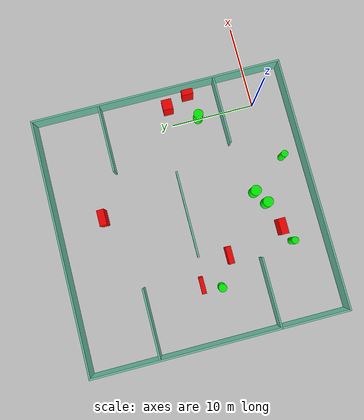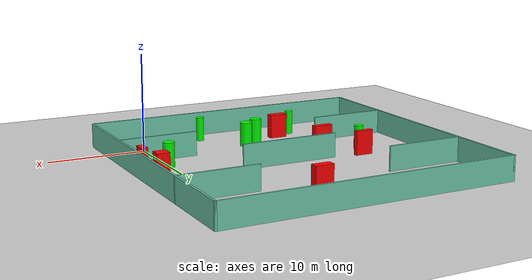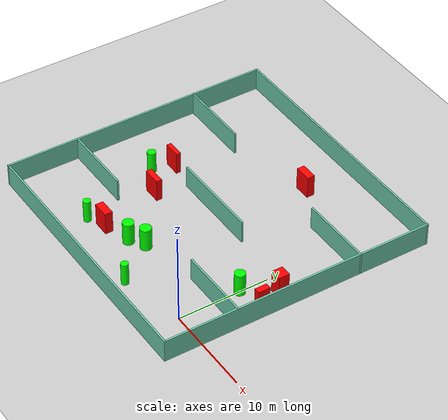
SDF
<sdf version="1.7">
 <world name="default">
  <light name="sun" type="directional">
   <pose>0 0 10 0 -0 0</pose>
   <diffuse>0.8 0.8 0.8 1</diffuse>
   <specular>0.2 0.2 0.2 1</specular>
   <attenuation>
    <range>1000</range>
    <constant>0.9</constant>
    <linear>0.01</linear>
    <quadratic>0.001</quadratic>
   </attenuation>
   <direction>-0.5 0.1 -0.9</direction>
   <spot><inner_angle>0</inner_angle><outer_angle>0</outer_angle><falloff>0</falloff></spot>
  </light>
  <model name="ground_plane">
   <static>1</static>
   <link name="link">
    <collision name="collision">
     <geometry><plane><normal>0 0 1</normal><size>100 100</size></plane></geometry>
     <surface>
      <contact><collide_bitmask>65535</collide_bitmask></contact>
      <friction><ode><mu>100</mu><mu2>50</mu2></ode></friction>
     </surface>
    </collision>
    <visual name="visual">
     <cast_shadows>0</cast_shadows>
     <geometry><plane><normal>0 0 1</normal><size>100 100</size></plane></geometry>
     <material>
      <script><uri>file://media/materials/scripts/gazebo.material</uri><name>Gazebo/Grey</name></script>
     </material>
    </visual>
   </link>
  </model>
  <gravity>0 0 -9.8</gravity>
  <magnetic_field>6e-06 2.3e-05 -4.2e-05</magnetic_field>
  <atmosphere type="adiabatic"/>
  <physics type="ode">
   <max_step_size>0.001</max_step_size>
   <real_time_factor>1</real_time_factor>
   <real_time_update_rate>1000</real_time_update_rate>
  </physics>
  <scene><ambient>0.4 0.4 0.4 1</ambient><background>0.7 0.7 0.7 1</background><shadows>1</shadows></scene>
  <spherical_coordinates>
   <surface_model>EARTH_WGS84</surface_model>
   <latitude_deg>0</latitude_deg>
   <longitude_deg>0</longitude_deg>
   <elevation>0</elevation>
   <heading_deg>0</heading_deg>
  </spherical_coordinates>
  <model name="my_base_walls">
   <link name="Wall_10">
    <collision name="Wall_10_Collision">
     <geometry><box><size>8.2 0.2 2.5</size></box></geometry>
     <pose>0 0 1.25 0 -0 0</pose>
    </collision>
    <visual name="Wall_10_Visual">
     <pose>0 0 1.25 0 -0 0</pose>
     <geometry><box><size>8.2 0.2 2.5</size></box></geometry>
     <material>
      <script><uri>file://media/materials/scripts/gazebo.material</uri><name>Gazebo/Grey</name></script>
      <ambient>0.435294 0.796078 0.67451 1</ambient>
     </material>
     <meta><layer>0</layer></meta>
    </visual>
    <pose>-11 -7 0 0 -0 0</pose>
   </link>
   <link name="Wall_12">
    <collision name="Wall_12_Collision">
     <geometry><box><size>8.2 0.2 2.5</size></box></geometry>
     <pose>0 0 1.25 0 -0 0</pose>
    </collision>
    <visual name="Wall_12_Visual">
     <pose>0 0 1.25 0 -0 0</pose>
     <geometry><box><size>8.2 0.2 2.5</size></box></geometry>
     <material>
      <script><uri>file://media/materials/scripts/gazebo.material</uri><name>Gazebo/Grey</name></script>
      <ambient>0.435294 0.796078 0.67451 1</ambient>
     </material>
     <meta><layer>0</layer></meta>
    </visual>
    <pose>-11 7 0 0 -0 0</pose>
   </link>
   <link name="Wall_14">
    <collision name="Wall_14_Collision">
     <geometry><box><size>8.2 0.2 2.5</size></box></geometry>
     <pose>0 0 1.25 0 -0 0</pose>
    </collision>
    <visual name="Wall_14_Visual">
     <pose>0 0 1.25 0 -0 0</pose>
     <geometry><box><size>8.2 0.2 2.5</size></box></geometry>
     <material>
      <script><uri>file://media/materials/scripts/gazebo.material</uri><name>Gazebo/Grey</name></script>
      <ambient>0.435294 0.796078 0.67451 1</ambient>
     </material>
     <meta><layer>0</layer></meta>
    </visual>
    <pose>11 7 0 0 -0 3.14159</pose>
   </link>
   <link name="Wall_16">
    <collision name="Wall_16_Collision">
     <geometry><box><size>10.2 0.2 2.5</size></box></geometry>
     <pose>0 0 1.25 0 -0 0</pose>
    </collision>
    <visual name="Wall_16_Visual">
     <pose>0 0 1.25 0 -0 0</pose>
     <geometry><box><size>10.2 0.2 2.5</size></box></geometry>
     <material>
      <script><uri>file://media/materials/scripts/gazebo.material</uri><name>Gazebo/Grey</name></script>
      <ambient>0.435294 0.796078 0.67451 1</ambient>
     </material>
     <meta><layer>0</layer></meta>
    </visual>
    <pose>0 0 0 0 -0 3.14159</pose>
   </link>
   <link name="Wall_2">
    <collision name="Wall_2_Collision">
     <geometry><box><size>30.2 0.2 2.5</size></box></geometry>
     <pose>0 0 1.25 0 -0 0</pose>
    </collision>
    <visual name="Wall_2_Visual">
     <pose>0 0 1.25 0 -0 0</pose>
     <geometry><box><size>30.2 0.2 2.5</size></box></geometry>
     <material>
      <script><uri>file://media/materials/scripts/gazebo.material</uri><name>Gazebo/Grey</name></script>
      <ambient>0.435294 0.796078 0.67451 1</ambient>
     </material>
     <meta><layer>0</layer></meta>
    </visual>
    <pose>0 -15 0 0 -0 3.14159</pose>
   </link>
   <link name="Wall_3">
    <collision name="Wall_3_Collision">
     <geometry><box><size>30.2 0.2 2.5</size></box></geometry>
     <pose>0 0 1.25 0 -0 0</pose>
    </collision>
    <visual name="Wall_3_Visual">
     <pose>0 0 1.25 0 -0 0</pose>
     <geometry><box><size>30.2 0.2 2.5</size></box></geometry>
     <material>
      <script><uri>file://media/materials/scripts/gazebo.material</uri><name>Gazebo/Grey</name></script>
      <ambient>0.435294 0.796078 0.67451 1</ambient>
     </material>
     <meta><layer>0</layer></meta>
    </visual>
    <pose>-15 0 0 0 -0 1.5708</pose>
   </link>
   <link name="Wall_4">
    <collision name="Wall_4_Collision">
     <geometry><box><size>30.2 0.2 2.5</size></box></geometry>
     <pose>0 0 1.25 0 -0 0</pose>
    </collision>
    <visual name="Wall_4_Visual">
     <pose>0 0 1.25 0 -0 0</pose>
     <geometry><box><size>30.2 0.2 2.5</size></box></geometry>
     <material>
      <script><uri>file://media/materials/scripts/gazebo.material</uri><name>Gazebo/Grey</name></script>
      <ambient>0.435294 0.796078 0.67451 1</ambient>
     </material>
     <meta><layer>0</layer></meta>
    </visual>
    <pose>0 15 0 0 -0 0</pose>
   </link>
   <link name="Wall_6">
    <collision name="Wall_6_Collision">
     <geometry><box><size>30.2 0.2 2.5</size></box></geometry>
     <pose>0 0 1.25 0 -0 0</pose>
    </collision>
    <visual name="Wall_6_Visual">
     <pose>0 0 1.25 0 -0 0</pose>
     <geometry><box><size>30.2 0.2 2.5</size></box></geometry>
     <material>
      <script><uri>file://media/materials/scripts/gazebo.material</uri><name>Gazebo/Grey</name></script>
      <ambient>0.435294 0.796078 0.67451 1</ambient>
     </material>
     <meta><layer>0</layer></meta>
    </visual>
    <pose>15 0 0 0 -0 1.5708</pose>
   </link>
   <link name="Wall_8">
    <collision name="Wall_8_Collision">
     <geometry><box><size>8.2 0.2 2.5</size></box></geometry>
     <pose>0 0 1.25 0 -0 0</pose>
    </collision>
    <visual name="Wall_8_Visual">
     <pose>0 0 1.25 0 -0 0</pose>
     <geometry><box><size>8.2 0.2 2.5</size></box></geometry>
     <material>
      <script><uri>file://media/materials/scripts/gazebo.material</uri><name>Gazebo/Grey</name></script>
      <ambient>0.435294 0.796078 0.67451 1</ambient>
     </material>
     <meta><layer>0</layer></meta>
    </visual>
    <pose>11 -7 0 0 -0 3.14159</pose>
   </link>
   <static>1</static>
   <pose>-11 11 0 0 -0 0</pose>
  </model>
  <model name="cylinder1">
   <static>1</static>
   <link name="link">
    <inertial>
     <mass>1</mass>
     <inertia><ixx>0.5</ixx><ixy>0</ixy><ixz>0</ixz><iyy>0.5</iyy><iyz>0</iyz><izz>1</izz></inertia>
    </inertial>
    <collision name="collision">
     <geometry><cylinder><radius>0.6077694096564781</radius><length>2.5</length></cylinder></geometry>
    </collision>
    <visual name="visual">
     <geometry><cylinder><radius>0.6077694096564781</radius><length>2.5</length></cylinder></geometry>
     <material>
      <ambient>0 1 0 1</ambient>
      <diffuse>0 1 0 1</diffuse>
      <specular>0.1 0.1 0.1 1</specular>
      <emissive>0 0 0 0</emissive>
     </material>
    </visual>
   </link>
   <pose>-11.969238524865357 1.6394734236104274 1.25 0 0 0</pose>
  </model>
  <model name="cylinder2">
   <static>1</static>
   <link name="link">
    <inertial>
     <mass>1</mass>
     <inertia><ixx>0.5</ixx><ixy>0</ixy><ixz>0</ixz><iyy>0.5</iyy><iyz>0</iyz><izz>1</izz></inertia>
    </inertial>
    <collision name="collision">
     <geometry><cylinder><radius>0.621905848879935</radius><length>2.5</length></cylinder></geometry>
    </collision>
    <visual name="visual">
     <geometry><cylinder><radius>0.621905848879935</radius><length>2.5</length></cylinder></geometry>
     <material>
      <ambient>0 1 0 1</ambient>
      <diffuse>0 1 0 1</diffuse>
      <specular>0.1 0.1 0.1 1</specular>
      <emissive>0 0 0 0</emissive>
     </material>
    </visual>
   </link>
   <pose>-10.35848971807269 2.6556487978023835 1.25 0 0 0</pose>
  </model>
  <model name="cylinder3">
   <static>1</static>
   <link name="link">
    <inertial>
     <mass>1</mass>
     <inertia><ixx>0.5</ixx><ixy>0</ixy><ixz>0</ixz><iyy>0.5</iyy><iyz>0</iyz><izz>1</izz></inertia>
    </inertial>
    <collision name="collision">
     <geometry><cylinder><radius>0.5746294757907695</radius><length>2.5</length></cylinder></geometry>
    </collision>
    <visual name="visual">
     <geometry><cylinder><radius>0.5746294757907695</radius><length>2.5</length></cylinder></geometry>
     <material>
      <ambient>0 1 0 1</ambient>
      <diffuse>0 1 0 1</diffuse>
      <specular>0.1 0.1 0.1 1</specular>
      <emissive>0 0 0 0</emissive>
     </material>
    </visual>
   </link>
   <pose>0.033153836229590894 6.818325404916944 1.25 0 0 0</pose>
  </model>
  <model name="cylinder4">
   <static>1</static>
   <link name="link">
    <inertial>
     <mass>1</mass>
     <inertia><ixx>0.5</ixx><ixy>0</ixy><ixz>0</ixz><iyy>0.5</iyy><iyz>0</iyz><izz>1</izz></inertia>
    </inertial>
    <collision name="collision">
     <geometry><cylinder><radius>0.4713091918593325</radius><length>2.5</length></cylinder></geometry>
    </collision>
    <visual name="visual">
     <geometry><cylinder><radius>0.4713091918593325</radius><length>2.5</length></cylinder></geometry>
     <material>
      <ambient>0 1 0 1</ambient>
      <diffuse>0 1 0 1</diffuse>
      <specular>0.1 0.1 0.1 1</specular>
      <emissive>0 0 0 0</emissive>
     </material>
    </visual>
   </link>
   <pose>-20.07126464221242 9.232645202881823 1.25 0 0 0</pose>
  </model>
  <model name="cylinder5">
   <static>1</static>
   <link name="link">
    <inertial>
     <mass>1</mass>
     <inertia><ixx>0.5</ixx><ixy>0</ixy><ixz>0</ixz><iyy>0.5</iyy><iyz>0</iyz><izz>1</izz></inertia>
    </inertial>
    <collision name="collision">
     <geometry><cylinder><radius>0.40258470282716313</radius><length>2.5</length></cylinder></geometry>
    </collision>
    <visual name="visual">
     <geometry><cylinder><radius>0.40258470282716313</radius><length>2.5</length></cylinder></geometry>
     <material>
      <ambient>0 1 0 1</ambient>
      <diffuse>0 1 0 1</diffuse>
      <specular>0.1 0.1 0.1 1</specular>
      <emissive>0 0 0 0</emissive>
     </material>
    </visual>
   </link>
   <pose>-7.03633565663203 -1.69431537427513 1.25 0 0 0</pose>
  </model>
  <model name="cylinder6">
   <static>1</static>
   <link name="link">
    <inertial>
     <mass>1</mass>
     <inertia><ixx>0.5</ixx><ixy>0</ixy><ixz>0</ixz><iyy>0.5</iyy><iyz>0</iyz><izz>1</izz></inertia>
    </inertial>
    <collision name="collision">
     <geometry><cylinder><radius>0.41061744568503156</radius><length>2.5</length></cylinder></geometry>
    </collision>
    <visual name="visual">
     <geometry><cylinder><radius>0.41061744568503156</radius><length>2.5</length></cylinder></geometry>
     <material>
      <ambient>0 1 0 1</ambient>
      <diffuse>0 1 0 1</diffuse>
      <specular>0.1 0.1 0.1 1</specular>
      <emissive>0 0 0 0</emissive>
     </material>
    </visual>
   </link>
   <pose>-16.97685773847332 -0.12499691549097536 1.25 0 0 0</pose>
  </model>
  <model name="box1">
   <static>1</static>
   <link name="link">
    <inertial>
     <mass>1</mass>
     <inertia><ixx>0.083</ixx><ixy>0</ixy><ixz>0</ixz><iyy>0.083</iyy><iyz>0</iyz><izz>0.083</izz></inertia>
    </inertial>
    <collision name="collision">
     <geometry><box><size>1.2479107673347403 1.1986995291096794 2.5</size></box></geometry>
    </collision>
    <visual name="visual">
     <geometry><box><size>1.2479107673347403 1.1986995291096794 2.5</size></box></geometry>
     <material>
      <ambient>1 0 0 1</ambient>
      <diffuse>1 0 0 1</diffuse>
      <specular>0.1 0.1 0.1 1</specular>
      <emissive>0 0 0 0</emissive>
     </material>
    </visual>
    <sensor name="my_contact" type="contact">
     <contact><collision>box_collision</collision><topic>__default_topic__</topic></contact>
    </sensor>
   </link>
   <pose>2.063297659167155 10.091243325021784 1.25 0 0 0</pose>
  </model>
  <model name="box2">
   <static>1</static>
   <link name="link">
    <inertial>
     <mass>1</mass>
     <inertia><ixx>0.083</ixx><ixy>0</ixy><ixz>0</ixz><iyy>0.083</iyy><iyz>0</iyz><izz>0.083</izz></inertia>
    </inertial>
    <collision name="collision">
     <geometry><box><size>0.6624181378265288 1.350946611423925 2.5</size></box></geometry>
    </collision>
    <visual name="visual">
     <geometry><box><size>0.6624181378265288 1.350946611423925 2.5</size></box></geometry>
     <material>
      <ambient>1 0 0 1</ambient>
      <diffuse>1 0 0 1</diffuse>
      <specular>0.1 0.1 0.1 1</specular>
      <emissive>0 0 0 0</emissive>
     </material>
    </visual>
    <sensor name="my_contact" type="contact">
     <contact><collision>box_collision</collision><topic>__default_topic__</topic></contact>
    </sensor>
   </link>
   <pose>2.949151788566212 7.436838400953665 1.25 0 0 0</pose>
  </model>
  <model name="box3">
   <static>1</static>
   <link name="link">
    <inertial>
     <mass>1</mass>
     <inertia><ixx>0.083</ixx><ixy>0</ixy><ixz>0</ixz><iyy>0.083</iyy><iyz>0</iyz><izz>0.083</izz></inertia>
    </inertial>
    <collision name="collision">
     <geometry><box><size>2.0108696844012055 0.6485862970939321 2.5</size></box></geometry>
    </collision>
    <visual name="visual">
     <geometry><box><size>2.0108696844012055 0.6485862970939321 2.5</size></box></geometry>
     <material>
      <ambient>1 0 0 1</ambient>
      <diffuse>1 0 0 1</diffuse>
      <specular>0.1 0.1 0.1 1</specular>
      <emissive>0 0 0 0</emissive>
     </material>
    </visual>
    <sensor name="my_contact" type="contact">
     <contact><collision>box_collision</collision><topic>__default_topic__</topic></contact>
    </sensor>
   </link>
   <pose>-16.74079115415217 7.495978382310279 1.25 0 0 0</pose>
  </model>
  <model name="box4">
   <static>1</static>
   <link name="link">
    <inertial>
     <mass>1</mass>
     <inertia><ixx>0.083</ixx><ixy>0</ixy><ixz>0</ixz><iyy>0.083</iyy><iyz>0</iyz><izz>0.083</izz></inertia>
    </inertial>
    <collision name="collision">
     <geometry><box><size>1.870061156529559 0.5124248285518366 2.5</size></box></geometry>
    </collision>
    <visual name="visual">
     <geometry><box><size>1.870061156529559 0.5124248285518366 2.5</size></box></geometry>
     <material>
      <ambient>1 0 0 1</ambient>
      <diffuse>1 0 0 1</diffuse>
      <specular>0.1 0.1 0.1 1</specular>
      <emissive>0 0 0 0</emissive>
     </material>
    </visual>
    <sensor name="my_contact" type="contact">
     <contact><collision>box_collision</collision><topic>__default_topic__</topic></contact>
    </sensor>
   </link>
   <pose>-19.263528990983218 11.373306295074254 1.25 0 0 0</pose>
  </model>
  <model name="box5">
   <static>1</static>
   <link name="link">
    <inertial>
     <mass>1</mass>
     <inertia><ixx>0.083</ixx><ixy>0</ixy><ixz>0</ixz><iyy>0.083</iyy><iyz>0</iyz><izz>0.083</izz></inertia>
    </inertial>
    <collision name="collision">
     <geometry><box><size>1.8691887075526181 0.865266989928051 2.5</size></box></geometry>
    </collision>
    <visual name="visual">
     <geometry><box><size>1.8691887075526181 0.865266989928051 2.5</size></box></geometry>
     <material>
      <ambient>1 0 0 1</ambient>
      <diffuse>1 0 0 1</diffuse>
      <specular>0.1 0.1 0.1 1</specular>
      <emissive>0 0 0 0</emissive>
     </material>
    </visual>
    <sensor name="my_contact" type="contact">
     <contact><collision>box_collision</collision><topic>__default_topic__</topic></contact>
    </sensor>
   </link>
   <pose>-15.075537386066152 0.7297118061484782 1.25 0 0 0</pose>
  </model>
  <model name="box6">
   <static>1</static>
   <link name="link">
    <inertial>
     <mass>1</mass>
     <inertia><ixx>0.083</ixx><ixy>0</ixy><ixz>0</ixz><iyy>0.083</iyy><iyz>0</iyz><izz>0.083</izz></inertia>
    </inertial>
    <collision name="collision">
     <geometry><box><size>1.866210481465525 0.8433568211366484 2.5</size></box></geometry>
    </collision>
    <visual name="visual">
     <geometry><box><size>1.866210481465525 0.8433568211366484 2.5</size></box></geometry>
     <material>
      <ambient>1 0 0 1</ambient>
      <diffuse>1 0 0 1</diffuse>
      <specular>0.1 0.1 0.1 1</specular>
      <emissive>0 0 0 0</emissive>
     </material>
    </visual>
    <sensor name="my_contact" type="contact">
     <contact><collision>box_collision</collision><topic>__default_topic__</topic></contact>
    </sensor>
   </link>
   <pose>-8.941344581516562 20.604231647588975 1.25 0 0 0</pose>
  </model>
 </world>
</sdf>
